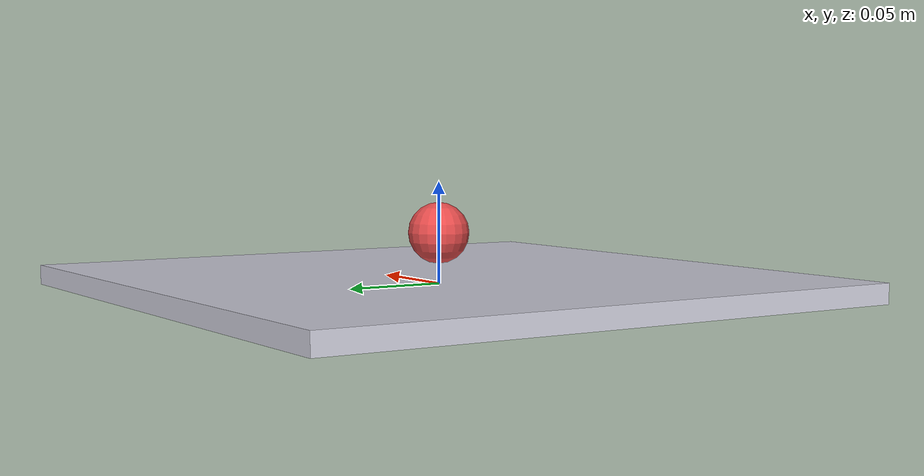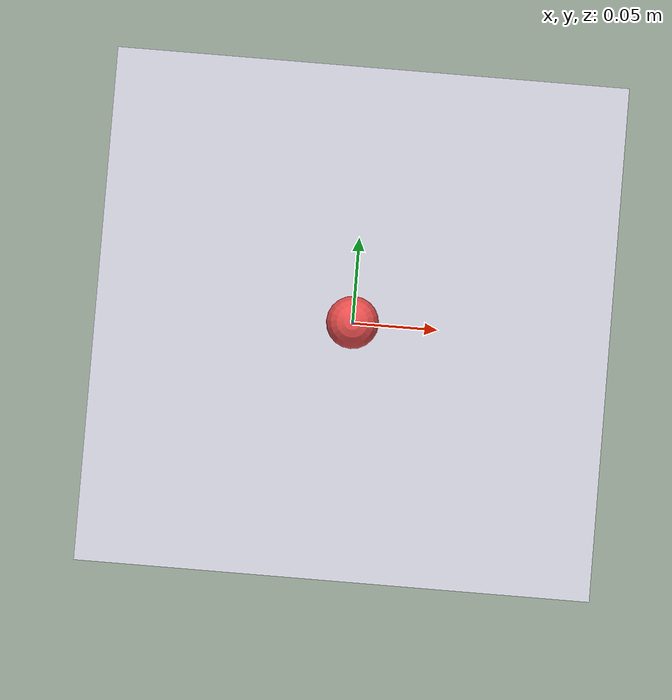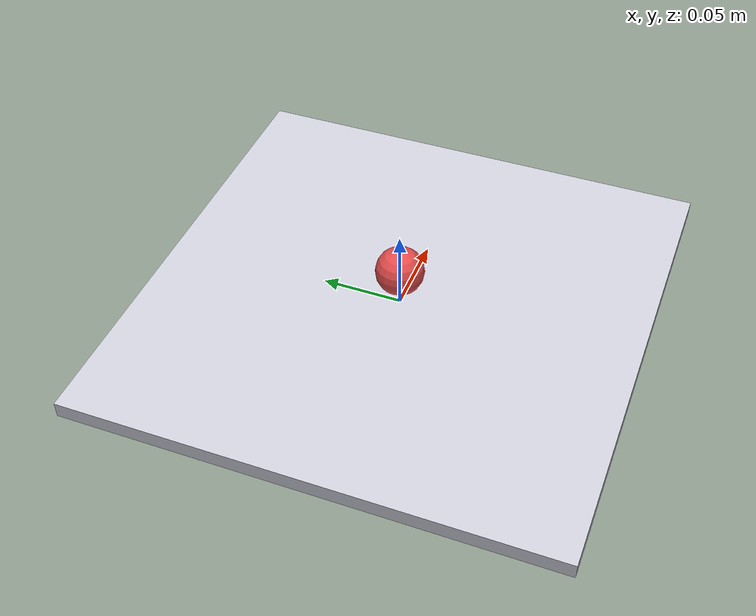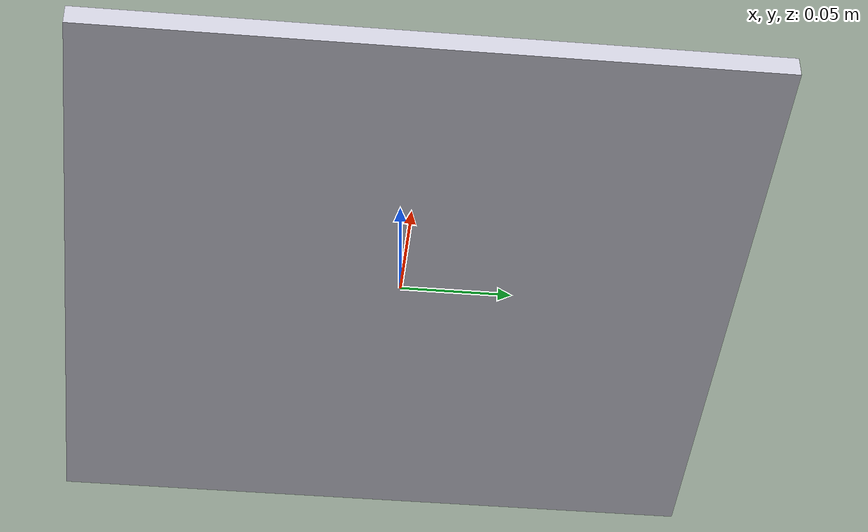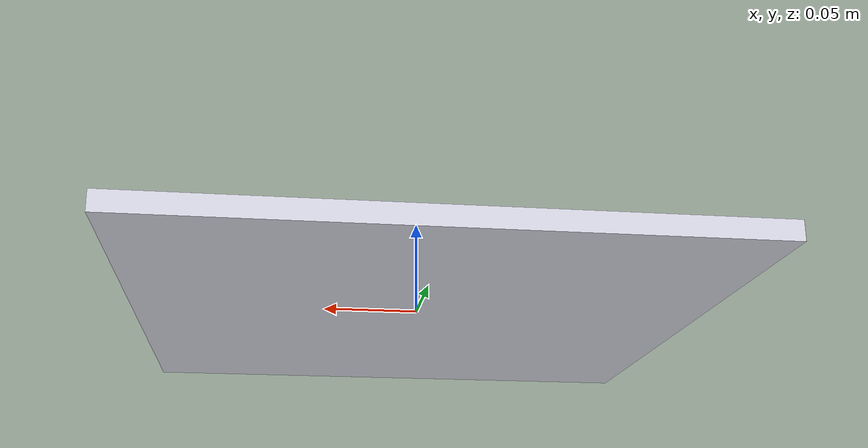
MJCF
<mujoco model="tilt_plate">
  <!-- 단위/파서 설정: 각도 degree, 관성은 geom에서 유도 -->
  <compiler angle="degree" inertiafromgeom="true"/>

  <!-- 시뮬레이션 옵션: 0.1 ms timestep, 표준 중력 -->
  <option timestep="0.0001" gravity="0 0 -9.81" integrator="RK4" />

  <!-- 기본값: 마찰(접선, 비틀림, 굴림), 해상도 등 -->
  <default>
    <geom  condim="6" margin="0.001" solimp="0.9 0.95 0.001" solref="0.002 1"/>
    <!-- 평판(금속) 과 구(고무) 정도의 마찰 차이를 줌 -->
    <default class="plate">
      <!-- 낮은 굴림마찰: 평활하지만 정지로 수렴 -->
      <geom type="box" friction="0.8 0.003 0.001" rgba="0.8 0.8 0.85 1"/>
    </default>
    <default class="ball">
      <!-- 굴림마찰을 약간 더 크게 (공이 너무 오래 굴러가지 않도록) -->
      <geom type="sphere" friction="0.9 0.005 0.002" rgba="0.9 0.3 0.3 1"/>
    </default>
    <joint armature="0.002" damping="0.1" limited="true"/>
    <motor gear="1.0" ctrllimited="true" ctrlrange="-1.0 1.0"/>
  </default>

  <asset>
    <!-- 시각화를 위한 재질/텍스처는 생략 가능 -->
  </asset>

  <worldbody>
    <!-- 기준 좌표 (0,0,0): 평판의 회전 중심 -->
    <!-- 평판 본체: 두께 5 mm, 한 변 0.30 m -->
    <body name="plate_base" pos="0 0 0">
      <!-- 두 축 힌지: x, y 축으로 기울임 (±5 deg는 필요시 조정) -->
      <joint name="hinge_x" type="hinge" axis="1 0 0" range="-5 5"/>
      <joint name="hinge_y" type="hinge" axis="0 1 0" range="-5 5"/>

      <geom name="plate_geom" class="plate" size="0.15 0.15 0.005" mass="1.0"/>
    </body>

    <!-- 공(body): 자유낙하 + 평판 접촉.
         반지름과 질량은 파라미터화(예: r=0.015 m, m=0.03 kg) -->
    <body name="ball" pos="0 0 0.025">
      <freejoint name="ball_free"/>
      <geom name="ball_geom" class="ball" size="0.015" mass="0.03"/>
    </body>
  </worldbody>

  <!-- 2축 힌지에 모터(토크 입력). 4엣지 입력→환경에서 매핑해 토크로 주입 -->
  <actuator>
    <motor name="mx" joint="hinge_x" gear="1"/>
    <motor name="my" joint="hinge_y" gear="1"/>
  </actuator>
</mujoco>
